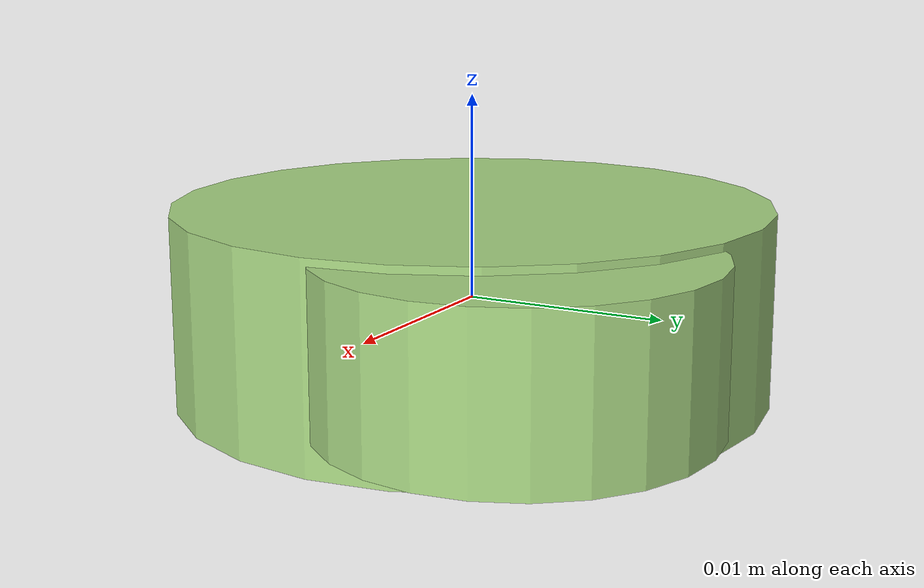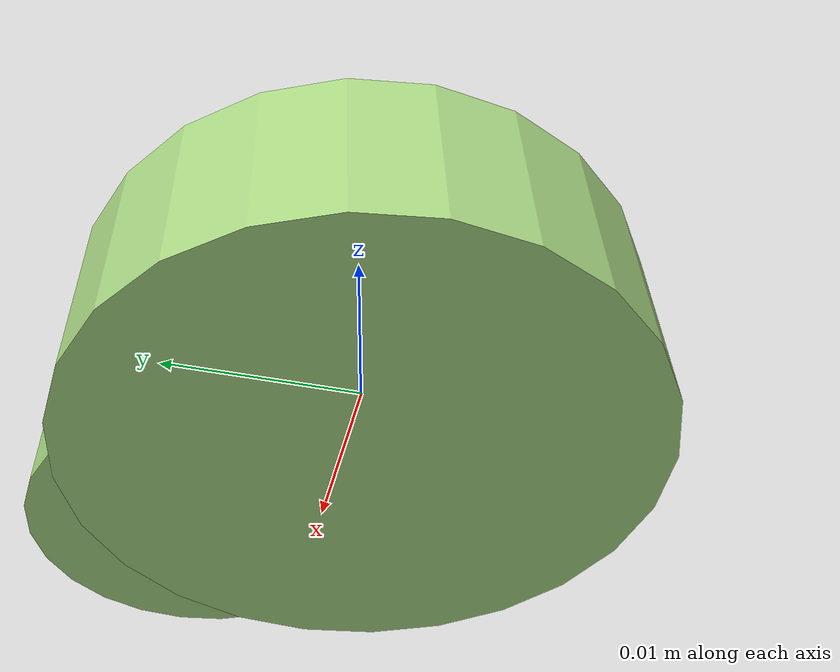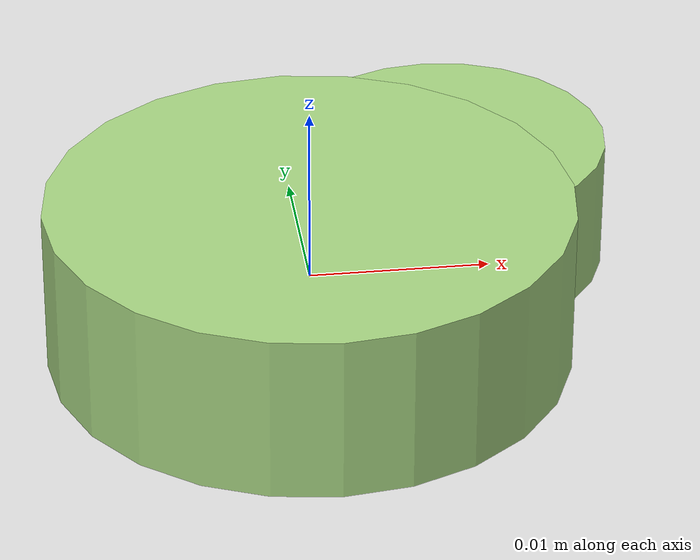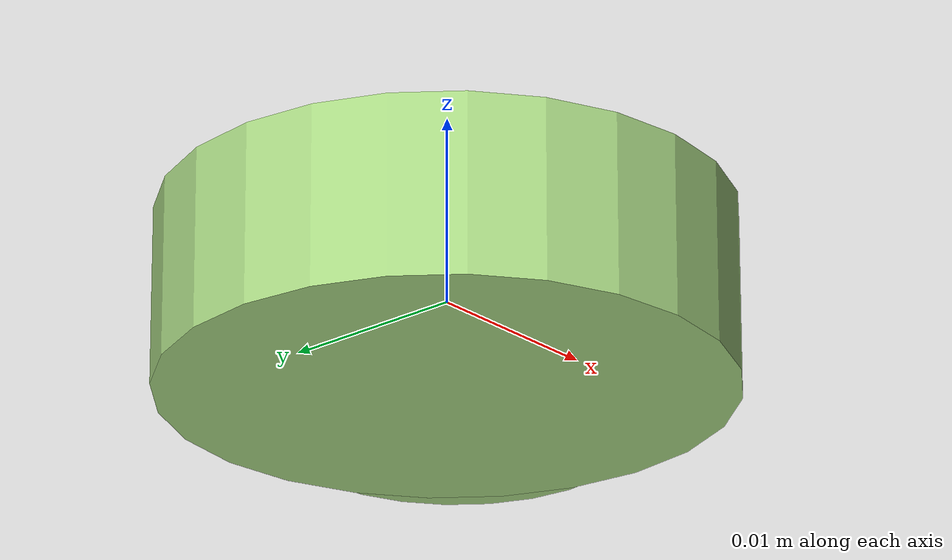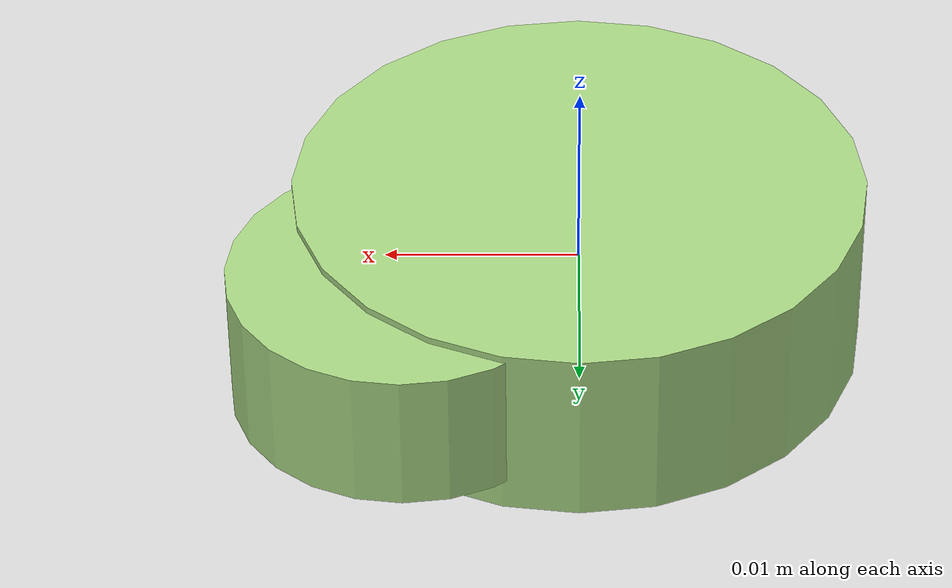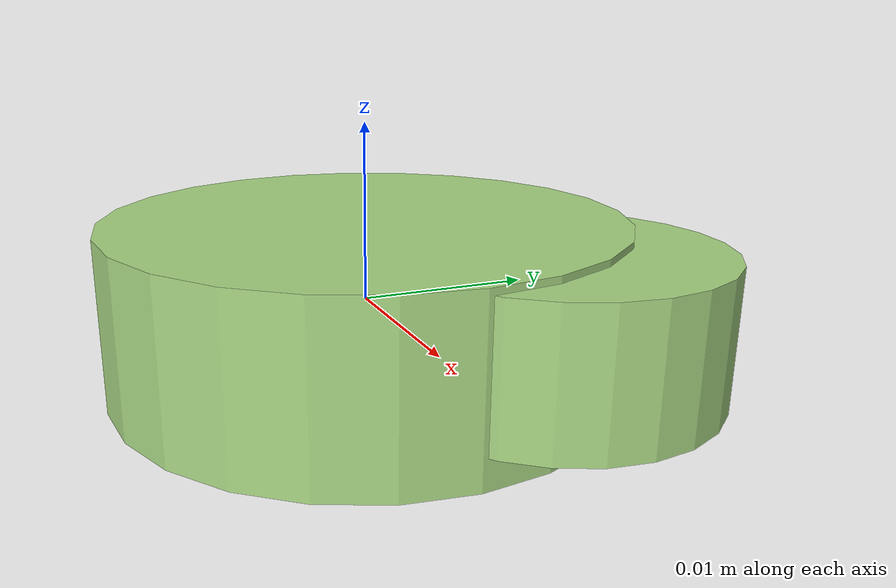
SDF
<?xml version="1.0" ?>
<!-- |    This document was autogenerated by xmacro from data/veggie_template/veggie_base.sdf.xacro  | -->
<!-- |    EDITING THIS FILE BY HAND IS NOT RECOMMENDED                                               | -->
<sdf version="1.8">
	<!-- Parameters -->
	<!-- Base -->
	<!-- Joint 0 -->
	<!-- Link 1 -->
	<!-- Joint 1 -->
	<!-- Link 2 -->
	<!-- Primitives -->
	<!-- All dimensions are half -->
	<!-- Object -->
	<model name="veggie">
		<!-- link0 -->
		<link name="link0">
			<inertial>
				<mass>0.006407959011394835</mass>
				<inertia>
					<ixx>3.920188501544351e-07</ixx>
					<ixy>0</ixy>
					<ixz>0</ixz>
					<iyy>3.920188501544351e-07</iyy>
					<iyz>0</iyz>
					<izz>6.875484312924076e-07</izz>
				</inertia>
			</inertial>
			<visual name="link0_visual">
				<pose>0 0 0 0 0 0</pose>
				<geometry>
					<cylinder>
						<radius>0.014648959659411043</radius>
						<length>0.009505068932103197</length>
					</cylinder>
				</geometry>
				<material>
					<ambient>0.659 0.839 0.514 1</ambient>
					<diffuse>0.659 0.839 0.514 1</diffuse>
					<specular>0 0 0 0</specular>
					<emissive>0 0 0 1</emissive>
				</material>
			</visual>
			<collision name="link0_collision">
				<pose>0 0 0 0 0 0 </pose>
				<geometry>
					<cylinder>
						<radius>0.014648959659411043</radius>
						<length>0.009505068932103197</length>
					</cylinder>
				</geometry>
			</collision>
		</link>
		<!-- link1 -->
		<joint name="joint0" type="fixed">
			<pose relative_to="link0">0.008629124170210091 0.0068606186894816 0.0006505641684287733 0.0 0.0 0.0</pose>
			<parent>link0</parent>
			<child>link1</child>
		</joint>
		<link name="link1">
			<pose relative_to="joint0">0 0 0 0 0 0</pose>
			<inertial>
				<mass>0.001882900817608081</mass>
				<inertia>
					<ixx>4.651443240296745e-08</ixx>
					<ixy>0</ixy>
					<ixz>0</ixz>
					<iyy>4.651443240296745e-08</iyy>
					<iyz>0</iyz>
					<izz>7.55017699933329e-08</izz>
				</inertia>
			</inertial>
			<visual name="link1_visual">
				<pose>0 0 0 0 0 0</pose>
				<geometry>
					<cylinder>
						<radius>0.008955293878311576</radius>
						<length>0.0074733766568253765</length>
					</cylinder>
				</geometry>
				<material>
					<ambient>0.659 0.839 0.514 1</ambient>
					<diffuse>0.659 0.839 0.514 1</diffuse>
					<specular>0 0 0 0</specular>
					<emissive>0 0 0 1</emissive>
				</material>
			</visual>
			<collision name="link1_collision">
				<pose>0 0 0 0 0 0 </pose>
				<geometry>
					<cylinder>
						<radius>0.008955293878311576</radius>
						<length>0.0074733766568253765</length>
					</cylinder>
				</geometry>
			</collision>
		</link>
		<!-- link2 -->
	</model>
</sdf>
